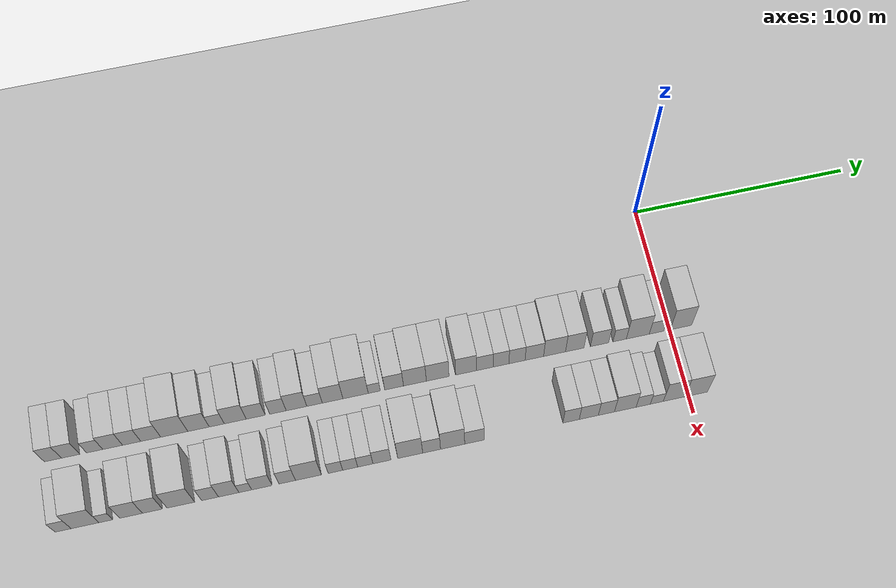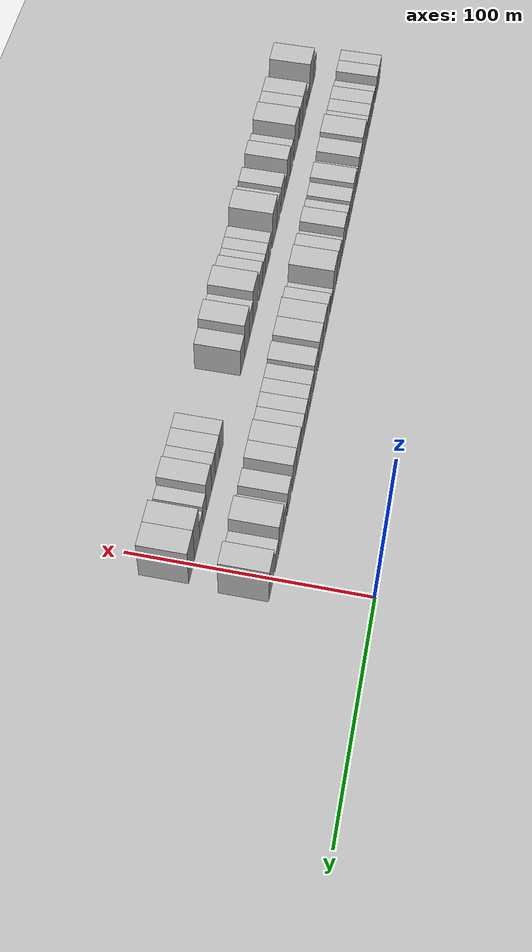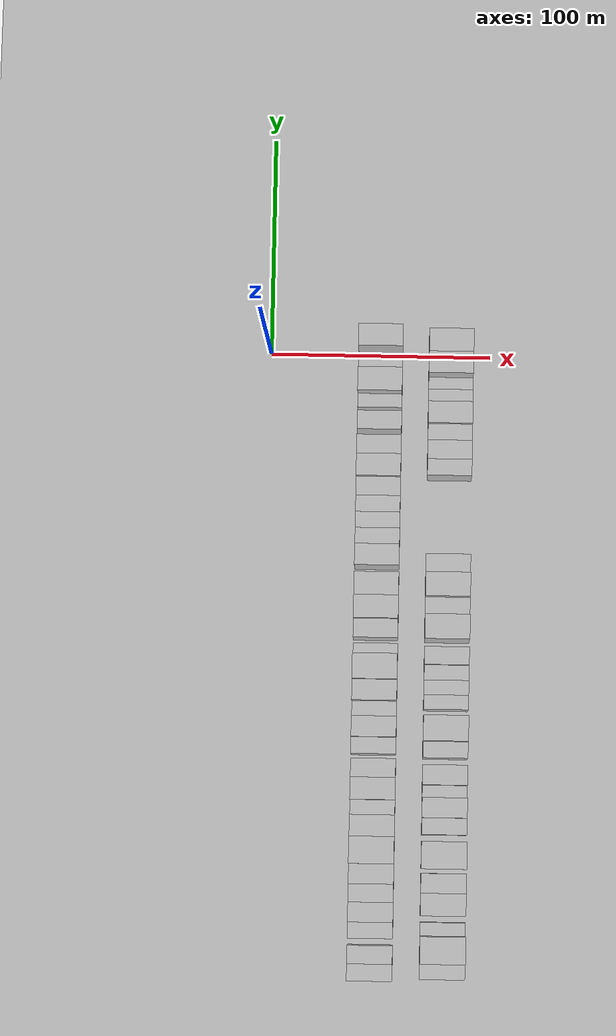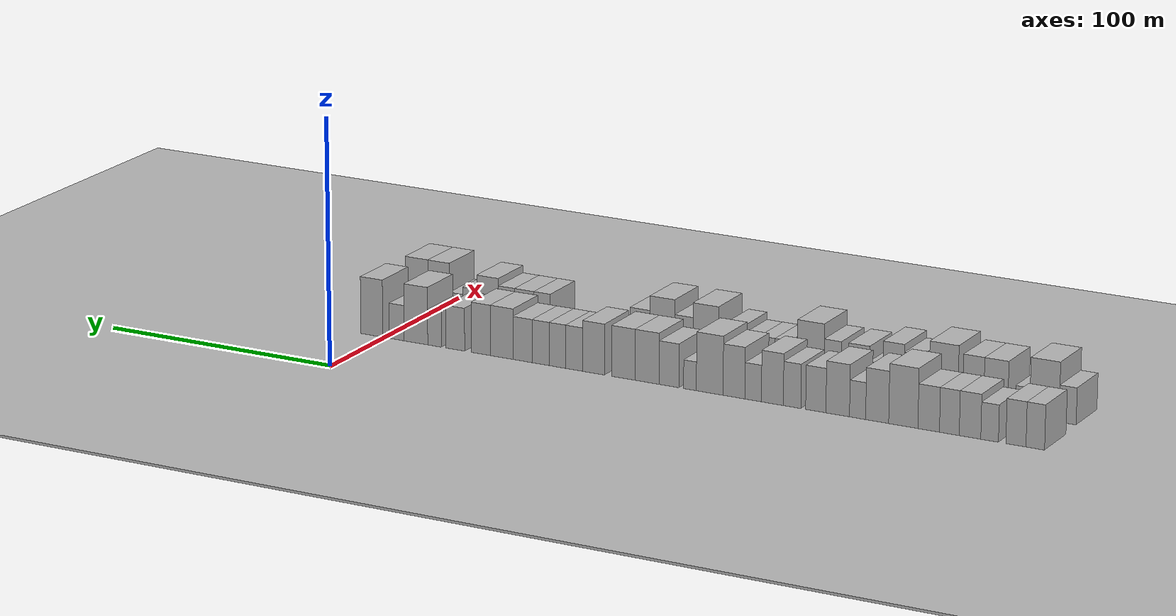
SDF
<sdf version="1.6">
 <world name="default">
  <include><name>ground_plane_1</name><uri>model://HANNAS_ground_plane</uri></include>
  <include>
   <name>ground_plane_2</name>
   <uri>model://HANNAS_ground_plane</uri>
   <pose>100 0 0  0 0 0</pose>
  </include>
  <model name="building_1">
   <static>1</static>
   <pose>50.0000 -278.2925 0 0.000000 0.000000 0.000000</pose>
   <link name="link">
    <pose>0 0 9.00 0 0 0</pose>
    <collision name="collision"><geometry><box><size>20.0000 7.4150 18.0000</size></box></geometry></collision>
    <visual name="visual">
     <cast_shadows>0</cast_shadows>
     <geometry><box><size>20.0000 7.4150 18.0000</size></box></geometry>
     <material>
      <script>
       <uri>model://HANNAS_wall/materials/scripts</uri>
       <uri>model://HANNAS_wall/materials/textures</uri>
       <name>vrc/HANNAS_wall</name>
      </script>
     </material>
    </visual>
   </link>
  </model>
  <model name="building_2">
   <static>1</static>
   <pose>50.0000 -270.5719 0 0.000000 0.000000 0.000000</pose>
   <link name="link">
    <pose>0 0 9.00 0 0 0</pose>
    <collision name="collision"><geometry><box><size>20.0000 8.0263 18.0000</size></box></geometry></collision>
    <visual name="visual">
     <cast_shadows>0</cast_shadows>
     <geometry><box><size>20.0000 8.0263 18.0000</size></box></geometry>
     <material>
      <script>
       <uri>model://HANNAS_wall/materials/scripts</uri>
       <uri>model://HANNAS_wall/materials/textures</uri>
       <name>vrc/HANNAS_wall</name>
      </script>
     </material>
    </visual>
   </link>
  </model>
  <model name="building_3">
   <static>1</static>
   <pose>50.0000 -260.0088 0 0.000000 0.000000 0.000000</pose>
   <link name="link">
    <pose>0 0 7.50 0 0 0</pose>
    <collision name="collision"><geometry><box><size>20.0000 7.0998 15.0000</size></box></geometry></collision>
    <visual name="visual">
     <cast_shadows>0</cast_shadows>
     <geometry><box><size>20.0000 7.0998 15.0000</size></box></geometry>
     <material>
      <script>
       <uri>model://HANNAS_wall/materials/scripts</uri>
       <uri>model://HANNAS_wall/materials/textures</uri>
       <name>vrc/HANNAS_wall</name>
      </script>
     </material>
    </visual>
   </link>
  </model>
  <model name="building_4">
   <static>1</static>
   <pose>50.0000 -252.1099 0 0.000000 0.000000 0.000000</pose>
   <link name="link">
    <pose>0 0 9.00 0 0 0</pose>
    <collision name="collision"><geometry><box><size>20.0000 8.6981 18.0000</size></box></geometry></collision>
    <visual name="visual">
     <cast_shadows>0</cast_shadows>
     <geometry><box><size>20.0000 8.6981 18.0000</size></box></geometry>
     <material>
      <script>
       <uri>model://HANNAS_wall/materials/scripts</uri>
       <uri>model://HANNAS_wall/materials/textures</uri>
       <name>vrc/HANNAS_wall</name>
      </script>
     </material>
    </visual>
   </link>
  </model>
  <model name="building_5">
   <static>1</static>
   <pose>50.0000 -243.7497 0 0.000000 0.000000 0.000000</pose>
   <link name="link">
    <pose>0 0 9.00 0 0 0</pose>
    <collision name="collision"><geometry><box><size>20.0000 8.0222 18.0000</size></box></geometry></collision>
    <visual name="visual">
     <cast_shadows>0</cast_shadows>
     <geometry><box><size>20.0000 8.0222 18.0000</size></box></geometry>
     <material>
      <script>
       <uri>model://HANNAS_wall/materials/scripts</uri>
       <uri>model://HANNAS_wall/materials/textures</uri>
       <name>vrc/HANNAS_wall</name>
      </script>
     </material>
    </visual>
   </link>
  </model>
  <model name="building_6">
   <static>1</static>
   <pose>50.0000 -235.3451 0 0.000000 0.000000 0.000000</pose>
   <link name="link">
    <pose>0 0 9.00 0 0 0</pose>
    <collision name="collision"><geometry><box><size>20.0000 8.7870 18.0000</size></box></geometry></collision>
    <visual name="visual">
     <cast_shadows>0</cast_shadows>
     <geometry><box><size>20.0000 8.7870 18.0000</size></box></geometry>
     <material>
      <script>
       <uri>model://HANNAS_wall/materials/scripts</uri>
       <uri>model://HANNAS_wall/materials/textures</uri>
       <name>vrc/HANNAS_wall</name>
      </script>
     </material>
    </visual>
   </link>
  </model>
  <model name="building_7">
   <static>1</static>
   <pose>50.0000 -224.9635 0 0.000000 0.000000 0.000000</pose>
   <link name="link">
    <pose>0 0 12.00 0 0 0</pose>
    <collision name="collision"><geometry><box><size>20.0000 11.9763 24.0000</size></box></geometry></collision>
    <visual name="visual">
     <cast_shadows>0</cast_shadows>
     <geometry><box><size>20.0000 11.9763 24.0000</size></box></geometry>
     <material>
      <script>
       <uri>model://HANNAS_wall/materials/scripts</uri>
       <uri>model://HANNAS_wall/materials/textures</uri>
       <name>vrc/HANNAS_wall</name>
      </script>
     </material>
    </visual>
   </link>
  </model>
  <model name="building_8">
   <static>1</static>
   <pose>50.0000 -214.2349 0 0.000000 0.000000 0.000000</pose>
   <link name="link">
    <pose>0 0 10.50 0 0 0</pose>
    <collision name="collision"><geometry><box><size>20.0000 9.4808 21.0000</size></box></geometry></collision>
    <visual name="visual">
     <cast_shadows>0</cast_shadows>
     <geometry><box><size>20.0000 9.4808 21.0000</size></box></geometry>
     <material>
      <script>
       <uri>model://HANNAS_wall/materials/scripts</uri>
       <uri>model://HANNAS_wall/materials/textures</uri>
       <name>vrc/HANNAS_wall</name>
      </script>
     </material>
    </visual>
   </link>
  </model>
  <model name="building_9">
   <static>1</static>
   <pose>50.0000 -206.1634 0 0.000000 0.000000 0.000000</pose>
   <link name="link">
    <pose>0 0 7.50 0 0 0</pose>
    <collision name="collision"><geometry><box><size>20.0000 6.6623 15.0000</size></box></geometry></collision>
    <visual name="visual">
     <cast_shadows>0</cast_shadows>
     <geometry><box><size>20.0000 6.6623 15.0000</size></box></geometry>
     <material>
      <script>
       <uri>model://HANNAS_wall/materials/scripts</uri>
       <uri>model://HANNAS_wall/materials/textures</uri>
       <name>vrc/HANNAS_wall</name>
      </script>
     </material>
    </visual>
   </link>
  </model>
  <model name="building_10">
   <static>1</static>
   <pose>50.0000 -197.9297 0 0.000000 0.000000 0.000000</pose>
   <link name="link">
    <pose>0 0 10.50 0 0 0</pose>
    <collision name="collision"><geometry><box><size>20.0000 9.8050 21.0000</size></box></geometry></collision>
    <visual name="visual">
     <cast_shadows>0</cast_shadows>
     <geometry><box><size>20.0000 9.8050 21.0000</size></box></geometry>
     <material>
      <script>
       <uri>model://HANNAS_wall/materials/scripts</uri>
       <uri>model://HANNAS_wall/materials/textures</uri>
       <name>vrc/HANNAS_wall</name>
      </script>
     </material>
    </visual>
   </link>
  </model>
  <model name="building_11">
   <static>1</static>
   <pose>50.0000 -188.8027 0 0.000000 0.000000 0.000000</pose>
   <link name="link">
    <pose>0 0 9.00 0 0 0</pose>
    <collision name="collision"><geometry><box><size>20.0000 8.4491 18.0000</size></box></geometry></collision>
    <visual name="visual">
     <cast_shadows>0</cast_shadows>
     <geometry><box><size>20.0000 8.4491 18.0000</size></box></geometry>
     <material>
      <script>
       <uri>model://HANNAS_wall/materials/scripts</uri>
       <uri>model://HANNAS_wall/materials/textures</uri>
       <name>vrc/HANNAS_wall</name>
      </script>
     </material>
    </visual>
   </link>
  </model>
  <model name="building_12">
   <static>1</static>
   <pose>50.0000 -178.9044 0 0.000000 0.000000 0.000000</pose>
   <link name="link">
    <pose>0 0 9.00 0 0 0</pose>
    <collision name="collision"><geometry><box><size>20.0000 7.3475 18.0000</size></box></geometry></collision>
    <visual name="visual">
     <cast_shadows>0</cast_shadows>
     <geometry><box><size>20.0000 7.3475 18.0000</size></box></geometry>
     <material>
      <script>
       <uri>model://HANNAS_wall/materials/scripts</uri>
       <uri>model://HANNAS_wall/materials/textures</uri>
       <name>vrc/HANNAS_wall</name>
      </script>
     </material>
    </visual>
   </link>
  </model>
  <model name="building_13">
   <static>1</static>
   <pose>50.0000 -170.6135 0 0.000000 0.000000 0.000000</pose>
   <link name="link">
    <pose>0 0 10.50 0 0 0</pose>
    <collision name="collision"><geometry><box><size>20.0000 9.2345 21.0000</size></box></geometry></collision>
    <visual name="visual">
     <cast_shadows>0</cast_shadows>
     <geometry><box><size>20.0000 9.2345 21.0000</size></box></geometry>
     <material>
      <script>
       <uri>model://HANNAS_wall/materials/scripts</uri>
       <uri>model://HANNAS_wall/materials/textures</uri>
       <name>vrc/HANNAS_wall</name>
      </script>
     </material>
    </visual>
   </link>
  </model>
  <model name="building_14">
   <static>1</static>
   <pose>50.0000 -162.5183 0 0.000000 0.000000 0.000000</pose>
   <link name="link">
    <pose>0 0 7.50 0 0 0</pose>
    <collision name="collision"><geometry><box><size>20.0000 6.9559 15.0000</size></box></geometry></collision>
    <visual name="visual">
     <cast_shadows>0</cast_shadows>
     <geometry><box><size>20.0000 6.9559 15.0000</size></box></geometry>
     <material>
      <script>
       <uri>model://HANNAS_wall/materials/scripts</uri>
       <uri>model://HANNAS_wall/materials/textures</uri>
       <name>vrc/HANNAS_wall</name>
      </script>
     </material>
    </visual>
   </link>
  </model>
  <model name="building_15">
   <static>1</static>
   <pose>50.0000 -154.4109 0 0.000000 0.000000 0.000000</pose>
   <link name="link">
    <pose>0 0 10.50 0 0 0</pose>
    <collision name="collision"><geometry><box><size>20.0000 9.2589 21.0000</size></box></geometry></collision>
    <visual name="visual">
     <cast_shadows>0</cast_shadows>
     <geometry><box><size>20.0000 9.2589 21.0000</size></box></geometry>
     <material>
      <script>
       <uri>model://HANNAS_wall/materials/scripts</uri>
       <uri>model://HANNAS_wall/materials/textures</uri>
       <name>vrc/HANNAS_wall</name>
      </script>
     </material>
    </visual>
   </link>
  </model>
  <model name="building_16">
   <static>1</static>
   <pose>50.0000 -144.0825 0 0.000000 0.000000 0.000000</pose>
   <link name="link">
    <pose>0 0 12.00 0 0 0</pose>
    <collision name="collision"><geometry><box><size>20.0000 11.3979 24.0000</size></box></geometry></collision>
    <visual name="visual">
     <cast_shadows>0</cast_shadows>
     <geometry><box><size>20.0000 11.3979 24.0000</size></box></geometry>
     <material>
      <script>
       <uri>model://HANNAS_wall/materials/scripts</uri>
       <uri>model://HANNAS_wall/materials/textures</uri>
       <name>vrc/HANNAS_wall</name>
      </script>
     </material>
    </visual>
   </link>
  </model>
  <model name="building_17">
   <static>1</static>
   <pose>50.0000 -135.6626 0 0.000000 0.000000 0.000000</pose>
   <link name="link">
    <pose>0 0 6.00 0 0 0</pose>
    <collision name="collision"><geometry><box><size>20.0000 5.4421 12.0000</size></box></geometry></collision>
    <visual name="visual">
     <cast_shadows>0</cast_shadows>
     <geometry><box><size>20.0000 5.4421 12.0000</size></box></geometry>
     <material>
      <script>
       <uri>model://HANNAS_wall/materials/scripts</uri>
       <uri>model://HANNAS_wall/materials/textures</uri>
       <name>vrc/HANNAS_wall</name>
      </script>
     </material>
    </visual>
   </link>
  </model>
  <model name="building_18">
   <static>1</static>
   <pose>50.0000 -126.6922 0 0.000000 0.000000 0.000000</pose>
   <link name="link">
    <pose>0 0 9.00 0 0 0</pose>
    <collision name="collision"><geometry><box><size>20.0000 8.4987 18.0000</size></box></geometry></collision>
    <visual name="visual">
     <cast_shadows>0</cast_shadows>
     <geometry><box><size>20.0000 8.4987 18.0000</size></box></geometry>
     <material>
      <script>
       <uri>model://HANNAS_wall/materials/scripts</uri>
       <uri>model://HANNAS_wall/materials/textures</uri>
       <name>vrc/HANNAS_wall</name>
      </script>
     </material>
    </visual>
   </link>
  </model>
  <model name="building_19">
   <static>1</static>
   <pose>50.0000 -117.2545 0 0.000000 0.000000 0.000000</pose>
   <link name="link">
    <pose>0 0 10.50 0 0 0</pose>
    <collision name="collision"><geometry><box><size>20.0000 10.3768 21.0000</size></box></geometry></collision>
    <visual name="visual">
     <cast_shadows>0</cast_shadows>
     <geometry><box><size>20.0000 10.3768 21.0000</size></box></geometry>
     <material>
      <script>
       <uri>model://HANNAS_wall/materials/scripts</uri>
       <uri>model://HANNAS_wall/materials/textures</uri>
       <name>vrc/HANNAS_wall</name>
      </script>
     </material>
    </visual>
   </link>
  </model>
  <model name="building_20">
   <static>1</static>
   <pose>50.0000 -106.9224 0 0.000000 0.000000 0.000000</pose>
   <link name="link">
    <pose>0 0 10.50 0 0 0</pose>
    <collision name="collision"><geometry><box><size>20.0000 10.2875 21.0000</size></box></geometry></collision>
    <visual name="visual">
     <cast_shadows>0</cast_shadows>
     <geometry><box><size>20.0000 10.2875 21.0000</size></box></geometry>
     <material>
      <script>
       <uri>model://HANNAS_wall/materials/scripts</uri>
       <uri>model://HANNAS_wall/materials/textures</uri>
       <name>vrc/HANNAS_wall</name>
      </script>
     </material>
    </visual>
   </link>
  </model>
  <model name="building_21">
   <static>1</static>
   <pose>50.0000 -93.9929 0 0.000000 0.000000 0.000000</pose>
   <link name="link">
    <pose>0 0 10.50 0 0 0</pose>
    <collision name="collision"><geometry><box><size>20.0000 9.5714 21.0000</size></box></geometry></collision>
    <visual name="visual">
     <cast_shadows>0</cast_shadows>
     <geometry><box><size>20.0000 9.5714 21.0000</size></box></geometry>
     <material>
      <script>
       <uri>model://HANNAS_wall/materials/scripts</uri>
       <uri>model://HANNAS_wall/materials/textures</uri>
       <name>vrc/HANNAS_wall</name>
      </script>
     </material>
    </visual>
   </link>
  </model>
  <model name="building_22">
   <static>1</static>
   <pose>50.0000 -85.4480 0 0.000000 0.000000 0.000000</pose>
   <link name="link">
    <pose>0 0 9.00 0 0 0</pose>
    <collision name="collision"><geometry><box><size>20.0000 7.5185 18.0000</size></box></geometry></collision>
    <visual name="visual">
     <cast_shadows>0</cast_shadows>
     <geometry><box><size>20.0000 7.5185 18.0000</size></box></geometry>
     <material>
      <script>
       <uri>model://HANNAS_wall/materials/scripts</uri>
       <uri>model://HANNAS_wall/materials/textures</uri>
       <name>vrc/HANNAS_wall</name>
      </script>
     </material>
    </visual>
   </link>
  </model>
  <model name="building_23">
   <static>1</static>
   <pose>50.0000 -78.0797 0 0.000000 0.000000 0.000000</pose>
   <link name="link">
    <pose>0 0 9.00 0 0 0</pose>
    <collision name="collision"><geometry><box><size>20.0000 7.2181 18.0000</size></box></geometry></collision>
    <visual name="visual">
     <cast_shadows>0</cast_shadows>
     <geometry><box><size>20.0000 7.2181 18.0000</size></box></geometry>
     <material>
      <script>
       <uri>model://HANNAS_wall/materials/scripts</uri>
       <uri>model://HANNAS_wall/materials/textures</uri>
       <name>vrc/HANNAS_wall</name>
      </script>
     </material>
    </visual>
   </link>
  </model>
  <model name="building_24">
   <static>1</static>
   <pose>50.0000 -70.7498 0 0.000000 0.000000 0.000000</pose>
   <link name="link">
    <pose>0 0 9.00 0 0 0</pose>
    <collision name="collision"><geometry><box><size>20.0000 7.4417 18.0000</size></box></geometry></collision>
    <visual name="visual">
     <cast_shadows>0</cast_shadows>
     <geometry><box><size>20.0000 7.4417 18.0000</size></box></geometry>
     <material>
      <script>
       <uri>model://HANNAS_wall/materials/scripts</uri>
       <uri>model://HANNAS_wall/materials/textures</uri>
       <name>vrc/HANNAS_wall</name>
      </script>
     </material>
    </visual>
   </link>
  </model>
  <model name="building_25">
   <static>1</static>
   <pose>50.0000 -62.7737 0 0.000000 0.000000 0.000000</pose>
   <link name="link">
    <pose>0 0 9.00 0 0 0</pose>
    <collision name="collision"><geometry><box><size>20.0000 8.5106 18.0000</size></box></geometry></collision>
    <visual name="visual">
     <cast_shadows>0</cast_shadows>
     <geometry><box><size>20.0000 8.5106 18.0000</size></box></geometry>
     <material>
      <script>
       <uri>model://HANNAS_wall/materials/scripts</uri>
       <uri>model://HANNAS_wall/materials/textures</uri>
       <name>vrc/HANNAS_wall</name>
      </script>
     </material>
    </visual>
   </link>
  </model>
  <model name="building_26">
   <static>1</static>
   <pose>50.0000 -53.4674 0 0.000000 0.000000 0.000000</pose>
   <link name="link">
    <pose>0 0 10.50 0 0 0</pose>
    <collision name="collision"><geometry><box><size>20.0000 10.1021 21.0000</size></box></geometry></collision>
    <visual name="visual">
     <cast_shadows>0</cast_shadows>
     <geometry><box><size>20.0000 10.1021 21.0000</size></box></geometry>
     <material>
      <script>
       <uri>model://HANNAS_wall/materials/scripts</uri>
       <uri>model://HANNAS_wall/materials/textures</uri>
       <name>vrc/HANNAS_wall</name>
      </script>
     </material>
    </visual>
   </link>
  </model>
  <model name="building_27">
   <static>1</static>
   <pose>50.0000 -44.1597 0 0.000000 0.000000 0.000000</pose>
   <link name="link">
    <pose>0 0 10.50 0 0 0</pose>
    <collision name="collision"><geometry><box><size>20.0000 8.5132 21.0000</size></box></geometry></collision>
    <visual name="visual">
     <cast_shadows>0</cast_shadows>
     <geometry><box><size>20.0000 8.5132 21.0000</size></box></geometry>
     <material>
      <script>
       <uri>model://HANNAS_wall/materials/scripts</uri>
       <uri>model://HANNAS_wall/materials/textures</uri>
       <name>vrc/HANNAS_wall</name>
      </script>
     </material>
    </visual>
   </link>
  </model>
  <model name="building_28">
   <static>1</static>
   <pose>50.0000 -32.6811 0 0.000000 0.000000 0.000000</pose>
   <link name="link">
    <pose>0 0 9.00 0 0 0</pose>
    <collision name="collision"><geometry><box><size>20.0000 8.4440 18.0000</size></box></geometry></collision>
    <visual name="visual">
     <cast_shadows>0</cast_shadows>
     <geometry><box><size>20.0000 8.4440 18.0000</size></box></geometry>
     <material>
      <script>
       <uri>model://HANNAS_wall/materials/scripts</uri>
       <uri>model://HANNAS_wall/materials/textures</uri>
       <name>vrc/HANNAS_wall</name>
      </script>
     </material>
    </visual>
   </link>
  </model>
  <model name="building_29">
   <static>1</static>
   <pose>50.0000 -23.3607 0 0.000000 0.000000 0.000000</pose>
   <link name="link">
    <pose>0 0 7.50 0 0 0</pose>
    <collision name="collision"><geometry><box><size>20.0000 6.1967 15.0000</size></box></geometry></collision>
    <visual name="visual">
     <cast_shadows>0</cast_shadows>
     <geometry><box><size>20.0000 6.1967 15.0000</size></box></geometry>
     <material>
      <script>
       <uri>model://HANNAS_wall/materials/scripts</uri>
       <uri>model://HANNAS_wall/materials/textures</uri>
       <name>vrc/HANNAS_wall</name>
      </script>
     </material>
    </visual>
   </link>
  </model>
  <model name="building_30">
   <static>1</static>
   <pose>50.0000 -14.9194 0 0.000000 0.000000 0.000000</pose>
   <link name="link">
    <pose>0 0 12.00 0 0 0</pose>
    <collision name="collision"><geometry><box><size>20.0000 10.6859 24.0000</size></box></geometry></collision>
    <visual name="visual">
     <cast_shadows>0</cast_shadows>
     <geometry><box><size>20.0000 10.6859 24.0000</size></box></geometry>
     <material>
      <script>
       <uri>model://HANNAS_wall/materials/scripts</uri>
       <uri>model://HANNAS_wall/materials/textures</uri>
       <name>vrc/HANNAS_wall</name>
      </script>
     </material>
    </visual>
   </link>
  </model>
  <model name="building_31">
   <static>1</static>
   <pose>50.0000 -6.2093 0 0.000000 0.000000 0.000000</pose>
   <link name="link">
    <pose>0 0 7.50 0 0 0</pose>
    <collision name="collision"><geometry><box><size>20.0000 6.7343 15.0000</size></box></geometry></collision>
    <visual name="visual">
     <cast_shadows>0</cast_shadows>
     <geometry><box><size>20.0000 6.7343 15.0000</size></box></geometry>
     <material>
      <script>
       <uri>model://HANNAS_wall/materials/scripts</uri>
       <uri>model://HANNAS_wall/materials/textures</uri>
       <name>vrc/HANNAS_wall</name>
      </script>
     </material>
    </visual>
   </link>
  </model>
  <model name="building_32">
   <static>1</static>
   <pose>50.0000 5.1715 0 0.000000 0.000000 0.000000</pose>
   <link name="link">
    <pose>0 0 12.00 0 0 0</pose>
    <collision name="collision"><geometry><box><size>20.0000 10.0273 24.0000</size></box></geometry></collision>
    <visual name="visual">
     <cast_shadows>0</cast_shadows>
     <geometry><box><size>20.0000 10.0273 24.0000</size></box></geometry>
     <material>
      <script>
       <uri>model://HANNAS_wall/materials/scripts</uri>
       <uri>model://HANNAS_wall/materials/textures</uri>
       <name>vrc/HANNAS_wall</name>
      </script>
     </material>
    </visual>
   </link>
  </model>
  <model name="building_64">
   <static>1</static>
   <pose>82.0000 -277.5355 0 0.000000 0.000000 0.000000</pose>
   <link name="link">
    <pose>0 0 7.50 0 0 0</pose>
    <collision name="collision"><geometry><box><size>20.0000 6.9290 15.0000</size></box></geometry></collision>
    <visual name="visual">
     <cast_shadows>0</cast_shadows>
     <geometry><box><size>20.0000 6.9290 15.0000</size></box></geometry>
     <material>
      <script>
       <uri>model://HANNAS_wall/materials/scripts</uri>
       <uri>model://HANNAS_wall/materials/textures</uri>
       <name>vrc/HANNAS_wall</name>
      </script>
     </material>
    </visual>
   </link>
  </model>
  <model name="building_65">
   <static>1</static>
   <pose>82.0000 -268.0983 0 0.000000 0.000000 0.000000</pose>
   <link name="link">
    <pose>0 0 12.00 0 0 0</pose>
    <collision name="collision"><geometry><box><size>20.0000 11.9453 24.0000</size></box></geometry></collision>
    <visual name="visual">
     <cast_shadows>0</cast_shadows>
     <geometry><box><size>20.0000 11.9453 24.0000</size></box></geometry>
     <material>
      <script>
       <uri>model://HANNAS_wall/materials/scripts</uri>
       <uri>model://HANNAS_wall/materials/textures</uri>
       <name>vrc/HANNAS_wall</name>
      </script>
     </material>
    </visual>
   </link>
  </model>
  <model name="building_66">
   <static>1</static>
   <pose>82.0000 -259.1820 0 0.000000 0.000000 0.000000</pose>
   <link name="link">
    <pose>0 0 6.00 0 0 0</pose>
    <collision name="collision"><geometry><box><size>20.0000 5.8873 12.0000</size></box></geometry></collision>
    <visual name="visual">
     <cast_shadows>0</cast_shadows>
     <geometry><box><size>20.0000 5.8873 12.0000</size></box></geometry>
     <material>
      <script>
       <uri>model://HANNAS_wall/materials/scripts</uri>
       <uri>model://HANNAS_wall/materials/textures</uri>
       <name>vrc/HANNAS_wall</name>
      </script>
     </material>
    </visual>
   </link>
  </model>
  <model name="building_67">
   <static>1</static>
   <pose>82.0000 -248.3042 0 0.000000 0.000000 0.000000</pose>
   <link name="link">
    <pose>0 0 10.50 0 0 0</pose>
    <collision name="collision"><geometry><box><size>20.0000 9.8682 21.0000</size></box></geometry></collision>
    <visual name="visual">
     <cast_shadows>0</cast_shadows>
     <geometry><box><size>20.0000 9.8682 21.0000</size></box></geometry>
     <material>
      <script>
       <uri>model://HANNAS_wall/materials/scripts</uri>
       <uri>model://HANNAS_wall/materials/textures</uri>
       <name>vrc/HANNAS_wall</name>
      </script>
     </material>
    </visual>
   </link>
  </model>
  <model name="building_68">
   <static>1</static>
   <pose>82.0000 -239.0659 0 0.000000 0.000000 0.000000</pose>
   <link name="link">
    <pose>0 0 10.50 0 0 0</pose>
    <collision name="collision"><geometry><box><size>20.0000 8.6084 21.0000</size></box></geometry></collision>
    <visual name="visual">
     <cast_shadows>0</cast_shadows>
     <geometry><box><size>20.0000 8.6084 21.0000</size></box></geometry>
     <material>
      <script>
       <uri>model://HANNAS_wall/materials/scripts</uri>
       <uri>model://HANNAS_wall/materials/textures</uri>
       <name>vrc/HANNAS_wall</name>
      </script>
     </material>
    </visual>
   </link>
  </model>
  <model name="building_69">
   <static>1</static>
   <pose>82.0000 -226.7629 0 0.000000 0.000000 0.000000</pose>
   <link name="link">
    <pose>0 0 12.00 0 0 0</pose>
    <collision name="collision"><geometry><box><size>20.0000 11.9976 24.0000</size></box></geometry></collision>
    <visual name="visual">
     <cast_shadows>0</cast_shadows>
     <geometry><box><size>20.0000 11.9976 24.0000</size></box></geometry>
     <material>
      <script>
       <uri>model://HANNAS_wall/materials/scripts</uri>
       <uri>model://HANNAS_wall/materials/textures</uri>
       <name>vrc/HANNAS_wall</name>
      </script>
     </material>
    </visual>
   </link>
  </model>
  <model name="building_70">
   <static>1</static>
   <pose>82.0000 -214.0837 0 0.000000 0.000000 0.000000</pose>
   <link name="link">
    <pose>0 0 9.00 0 0 0</pose>
    <collision name="collision"><geometry><box><size>20.0000 7.3609 18.0000</size></box></geometry></collision>
    <visual name="visual">
     <cast_shadows>0</cast_shadows>
     <geometry><box><size>20.0000 7.3609 18.0000</size></box></geometry>
     <material>
      <script>
       <uri>model://HANNAS_wall/materials/scripts</uri>
       <uri>model://HANNAS_wall/materials/textures</uri>
       <name>vrc/HANNAS_wall</name>
      </script>
     </material>
    </visual>
   </link>
  </model>
  <model name="building_71">
   <static>1</static>
   <pose>82.0000 -205.9521 0 0.000000 0.000000 0.000000</pose>
   <link name="link">
    <pose>0 0 10.50 0 0 0</pose>
    <collision name="collision"><geometry><box><size>20.0000 8.9022 21.0000</size></box></geometry></collision>
    <visual name="visual">
     <cast_shadows>0</cast_shadows>
     <geometry><box><size>20.0000 8.9022 21.0000</size></box></geometry>
     <material>
      <script>
       <uri>model://HANNAS_wall/materials/scripts</uri>
       <uri>model://HANNAS_wall/materials/textures</uri>
       <name>vrc/HANNAS_wall</name>
      </script>
     </material>
    </visual>
   </link>
  </model>
  <model name="building_72">
   <static>1</static>
   <pose>82.0000 -198.6975 0 0.000000 0.000000 0.000000</pose>
   <link name="link">
    <pose>0 0 6.00 0 0 0</pose>
    <collision name="collision"><geometry><box><size>20.0000 5.6071 12.0000</size></box></geometry></collision>
    <visual name="visual">
     <cast_shadows>0</cast_shadows>
     <geometry><box><size>20.0000 5.6071 12.0000</size></box></geometry>
     <material>
      <script>
       <uri>model://HANNAS_wall/materials/scripts</uri>
       <uri>model://HANNAS_wall/materials/textures</uri>
       <name>vrc/HANNAS_wall</name>
      </script>
     </material>
    </visual>
   </link>
  </model>
  <model name="building_73">
   <static>1</static>
   <pose>82.0000 -191.4350 0 0.000000 0.000000 0.000000</pose>
   <link name="link">
    <pose>0 0 9.00 0 0 0</pose>
    <collision name="collision"><geometry><box><size>20.0000 8.9180 18.0000</size></box></geometry></collision>
    <visual name="visual">
     <cast_shadows>0</cast_shadows>
     <geometry><box><size>20.0000 8.9180 18.0000</size></box></geometry>
     <material>
      <script>
       <uri>model://HANNAS_wall/materials/scripts</uri>
       <uri>model://HANNAS_wall/materials/textures</uri>
       <name>vrc/HANNAS_wall</name>
      </script>
     </material>
    </visual>
   </link>
  </model>
  <model name="building_74">
   <static>1</static>
   <pose>82.0000 -180.3406 0 0.000000 0.000000 0.000000</pose>
   <link name="link">
    <pose>0 0 9.00 0 0 0</pose>
    <collision name="collision"><geometry><box><size>20.0000 7.2707 18.0000</size></box></geometry></collision>
    <visual name="visual">
     <cast_shadows>0</cast_shadows>
     <geometry><box><size>20.0000 7.2707 18.0000</size></box></geometry>
     <material>
      <script>
       <uri>model://HANNAS_wall/materials/scripts</uri>
       <uri>model://HANNAS_wall/materials/textures</uri>
       <name>vrc/HANNAS_wall</name>
      </script>
     </material>
    </visual>
   </link>
  </model>
  <model name="building_75">
   <static>1</static>
   <pose>82.0000 -171.0153 0 0.000000 0.000000 0.000000</pose>
   <link name="link">
    <pose>0 0 12.00 0 0 0</pose>
    <collision name="collision"><geometry><box><size>20.0000 11.3799 24.0000</size></box></geometry></collision>
    <visual name="visual">
     <cast_shadows>0</cast_shadows>
     <geometry><box><size>20.0000 11.3799 24.0000</size></box></geometry>
     <material>
      <script>
       <uri>model://HANNAS_wall/materials/scripts</uri>
       <uri>model://HANNAS_wall/materials/textures</uri>
       <name>vrc/HANNAS_wall</name>
      </script>
     </material>
    </visual>
   </link>
  </model>
  <model name="building_76">
   <static>1</static>
   <pose>82.0000 -159.0965 0 0.000000 0.000000 0.000000</pose>
   <link name="link">
    <pose>0 0 7.50 0 0 0</pose>
    <collision name="collision"><geometry><box><size>20.0000 6.4578 15.0000</size></box></geometry></collision>
    <visual name="visual">
     <cast_shadows>0</cast_shadows>
     <geometry><box><size>20.0000 6.4578 15.0000</size></box></geometry>
     <material>
      <script>
       <uri>model://HANNAS_wall/materials/scripts</uri>
       <uri>model://HANNAS_wall/materials/textures</uri>
       <name>vrc/HANNAS_wall</name>
      </script>
     </material>
    </visual>
   </link>
  </model>
  <model name="building_77">
   <static>1</static>
   <pose>82.0000 -152.5742 0 0.000000 0.000000 0.000000</pose>
   <link name="link">
    <pose>0 0 7.50 0 0 0</pose>
    <collision name="collision"><geometry><box><size>20.0000 6.5868 15.0000</size></box></geometry></collision>
    <visual name="visual">
     <cast_shadows>0</cast_shadows>
     <geometry><box><size>20.0000 6.5868 15.0000</size></box></geometry>
     <material>
      <script>
       <uri>model://HANNAS_wall/materials/scripts</uri>
       <uri>model://HANNAS_wall/materials/textures</uri>
       <name>vrc/HANNAS_wall</name>
      </script>
     </material>
    </visual>
   </link>
  </model>
  <model name="building_78">
   <static>1</static>
   <pose>82.0000 -145.9189 0 0.000000 0.000000 0.000000</pose>
   <link name="link">
    <pose>0 0 7.50 0 0 0</pose>
    <collision name="collision"><geometry><box><size>20.0000 6.7239 15.0000</size></box></geometry></collision>
    <visual name="visual">
     <cast_shadows>0</cast_shadows>
     <geometry><box><size>20.0000 6.7239 15.0000</size></box></geometry>
     <material>
      <script>
       <uri>model://HANNAS_wall/materials/scripts</uri>
       <uri>model://HANNAS_wall/materials/textures</uri>
       <name>vrc/HANNAS_wall</name>
      </script>
     </material>
    </visual>
   </link>
  </model>
  <model name="building_79">
   <static>1</static>
   <pose>82.0000 -138.5480 0 0.000000 0.000000 0.000000</pose>
   <link name="link">
    <pose>0 0 9.00 0 0 0</pose>
    <collision name="collision"><geometry><box><size>20.0000 8.0179 18.0000</size></box></geometry></collision>
    <visual name="visual">
     <cast_shadows>0</cast_shadows>
     <geometry><box><size>20.0000 8.0179 18.0000</size></box></geometry>
     <material>
      <script>
       <uri>model://HANNAS_wall/materials/scripts</uri>
       <uri>model://HANNAS_wall/materials/textures</uri>
       <name>vrc/HANNAS_wall</name>
      </script>
     </material>
    </visual>
   </link>
  </model>
  <model name="building_80">
   <static>1</static>
   <pose>82.0000 -125.9845 0 0.000000 0.000000 0.000000</pose>
   <link name="link">
    <pose>0 0 12.00 0 0 0</pose>
    <collision name="collision"><geometry><box><size>20.0000 11.1091 24.0000</size></box></geometry></collision>
    <visual name="visual">
     <cast_shadows>0</cast_shadows>
     <geometry><box><size>20.0000 11.1091 24.0000</size></box></geometry>
     <material>
      <script>
       <uri>model://HANNAS_wall/materials/scripts</uri>
       <uri>model://HANNAS_wall/materials/textures</uri>
       <name>vrc/HANNAS_wall</name>
      </script>
     </material>
    </visual>
   </link>
  </model>
  <model name="building_81">
   <static>1</static>
   <pose>82.0000 -116.4509 0 0.000000 0.000000 0.000000</pose>
   <link name="link">
    <pose>0 0 9.00 0 0 0</pose>
    <collision name="collision"><geometry><box><size>20.0000 7.9583 18.0000</size></box></geometry></collision>
    <visual name="visual">
     <cast_shadows>0</cast_shadows>
     <geometry><box><size>20.0000 7.9583 18.0000</size></box></geometry>
     <material>
      <script>
       <uri>model://HANNAS_wall/materials/scripts</uri>
       <uri>model://HANNAS_wall/materials/textures</uri>
       <name>vrc/HANNAS_wall</name>
      </script>
     </material>
    </visual>
   </link>
  </model>
  <model name="building_82">
   <static>1</static>
   <pose>82.0000 -107.0744 0 0.000000 0.000000 0.000000</pose>
   <link name="link">
    <pose>0 0 12.00 0 0 0</pose>
    <collision name="collision"><geometry><box><size>20.0000 10.7947 24.0000</size></box></geometry></collision>
    <visual name="visual">
     <cast_shadows>0</cast_shadows>
     <geometry><box><size>20.0000 10.7947 24.0000</size></box></geometry>
     <material>
      <script>
       <uri>model://HANNAS_wall/materials/scripts</uri>
       <uri>model://HANNAS_wall/materials/textures</uri>
       <name>vrc/HANNAS_wall</name>
      </script>
     </material>
    </visual>
   </link>
  </model>
  <model name="building_83">
   <static>1</static>
   <pose>82.0000 -97.2896 0 0.000000 0.000000 0.000000</pose>
   <link name="link">
    <pose>0 0 9.00 0 0 0</pose>
    <collision name="collision"><geometry><box><size>20.0000 8.7748 18.0000</size></box></geometry></collision>
    <visual name="visual">
     <cast_shadows>0</cast_shadows>
     <geometry><box><size>20.0000 8.7748 18.0000</size></box></geometry>
     <material>
      <script>
       <uri>model://HANNAS_wall/materials/scripts</uri>
       <uri>model://HANNAS_wall/materials/textures</uri>
       <name>vrc/HANNAS_wall</name>
      </script>
     </material>
    </visual>
   </link>
  </model>
  <model name="building_84">
   <static>1</static>
   <pose>82.0000 -53.7612 0 0.000000 0.000000 0.000000</pose>
   <link name="link">
    <pose>0 0 9.00 0 0 0</pose>
    <collision name="collision"><geometry><box><size>20.0000 7.4273 18.0000</size></box></geometry></collision>
    <visual name="visual">
     <cast_shadows>0</cast_shadows>
     <geometry><box><size>20.0000 7.4273 18.0000</size></box></geometry>
     <material>
      <script>
       <uri>model://HANNAS_wall/materials/scripts</uri>
       <uri>model://HANNAS_wall/materials/textures</uri>
       <name>vrc/HANNAS_wall</name>
      </script>
     </material>
    </visual>
   </link>
  </model>
  <model name="building_85">
   <static>1</static>
   <pose>82.0000 -45.7250 0 0.000000 0.000000 0.000000</pose>
   <link name="link">
    <pose>0 0 9.00 0 0 0</pose>
    <collision name="collision"><geometry><box><size>20.0000 8.6450 18.0000</size></box></geometry></collision>
    <visual name="visual">
     <cast_shadows>0</cast_shadows>
     <geometry><box><size>20.0000 8.6450 18.0000</size></box></geometry>
     <material>
      <script>
       <uri>model://HANNAS_wall/materials/scripts</uri>
       <uri>model://HANNAS_wall/materials/textures</uri>
       <name>vrc/HANNAS_wall</name>
      </script>
     </material>
    </visual>
   </link>
  </model>
  <model name="building_86">
   <static>1</static>
   <pose>82.0000 -37.7490 0 0.000000 0.000000 0.000000</pose>
   <link name="link">
    <pose>0 0 9.00 0 0 0</pose>
    <collision name="collision"><geometry><box><size>20.0000 7.3071 18.0000</size></box></geometry></collision>
    <visual name="visual">
     <cast_shadows>0</cast_shadows>
     <geometry><box><size>20.0000 7.3071 18.0000</size></box></geometry>
     <material>
      <script>
       <uri>model://HANNAS_wall/materials/scripts</uri>
       <uri>model://HANNAS_wall/materials/textures</uri>
       <name>vrc/HANNAS_wall</name>
      </script>
     </material>
    </visual>
   </link>
  </model>
  <model name="building_87">
   <static>1</static>
   <pose>82.0000 -29.1583 0 0.000000 0.000000 0.000000</pose>
   <link name="link">
    <pose>0 0 10.50 0 0 0</pose>
    <collision name="collision"><geometry><box><size>20.0000 9.8742 21.0000</size></box></geometry></collision>
    <visual name="visual">
     <cast_shadows>0</cast_shadows>
     <geometry><box><size>20.0000 9.8742 21.0000</size></box></geometry>
     <material>
      <script>
       <uri>model://HANNAS_wall/materials/scripts</uri>
       <uri>model://HANNAS_wall/materials/textures</uri>
       <name>vrc/HANNAS_wall</name>
      </script>
     </material>
    </visual>
   </link>
  </model>
  <model name="building_88">
   <static>1</static>
   <pose>82.0000 -20.9743 0 0.000000 0.000000 0.000000</pose>
   <link name="link">
    <pose>0 0 7.50 0 0 0</pose>
    <collision name="collision"><geometry><box><size>20.0000 6.4939 15.0000</size></box></geometry></collision>
    <visual name="visual">
     <cast_shadows>0</cast_shadows>
     <geometry><box><size>20.0000 6.4939 15.0000</size></box></geometry>
     <material>
      <script>
       <uri>model://HANNAS_wall/materials/scripts</uri>
       <uri>model://HANNAS_wall/materials/textures</uri>
       <name>vrc/HANNAS_wall</name>
      </script>
     </material>
    </visual>
   </link>
  </model>
  <model name="building_89">
   <static>1</static>
   <pose>82.0000 -14.7493 0 0.000000 0.000000 0.000000</pose>
   <link name="link">
    <pose>0 0 6.00 0 0 0</pose>
    <collision name="collision"><geometry><box><size>20.0000 5.9560 12.0000</size></box></geometry></collision>
    <visual name="visual">
     <cast_shadows>0</cast_shadows>
     <geometry><box><size>20.0000 5.9560 12.0000</size></box></geometry>
     <material>
      <script>
       <uri>model://HANNAS_wall/materials/scripts</uri>
       <uri>model://HANNAS_wall/materials/textures</uri>
       <name>vrc/HANNAS_wall</name>
      </script>
     </material>
    </visual>
   </link>
  </model>
  <model name="building_90">
   <static>1</static>
   <pose>82.0000 -6.8632 0 0.000000 0.000000 0.000000</pose>
   <link name="link">
    <pose>0 0 12.00 0 0 0</pose>
    <collision name="collision"><geometry><box><size>20.0000 9.8162 24.0000</size></box></geometry></collision>
    <visual name="visual">
     <cast_shadows>0</cast_shadows>
     <geometry><box><size>20.0000 9.8162 24.0000</size></box></geometry>
     <material>
      <script>
       <uri>model://HANNAS_wall/materials/scripts</uri>
       <uri>model://HANNAS_wall/materials/textures</uri>
       <name>vrc/HANNAS_wall</name>
      </script>
     </material>
    </visual>
   </link>
  </model>
  <model name="building_91">
   <static>1</static>
   <pose>82.0000 3.3107 0 0.000000 0.000000 0.000000</pose>
   <link name="link">
    <pose>0 0 12.00 0 0 0</pose>
    <collision name="collision"><geometry><box><size>20.0000 10.5314 24.0000</size></box></geometry></collision>
    <visual name="visual">
     <cast_shadows>0</cast_shadows>
     <geometry><box><size>20.0000 10.5314 24.0000</size></box></geometry>
     <material>
      <script>
       <uri>model://HANNAS_wall/materials/scripts</uri>
       <uri>model://HANNAS_wall/materials/textures</uri>
       <name>vrc/HANNAS_wall</name>
      </script>
     </material>
    </visual>
   </link>
  </model>
 </world>
</sdf>
